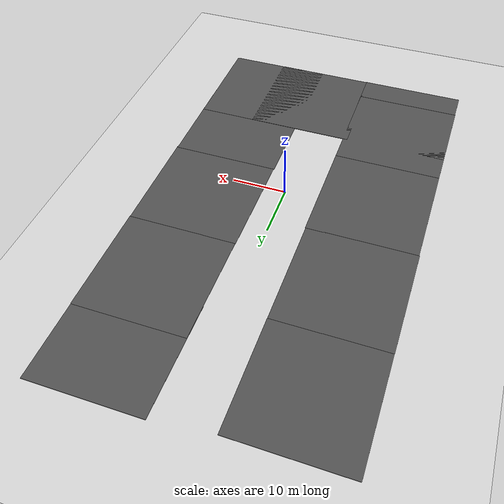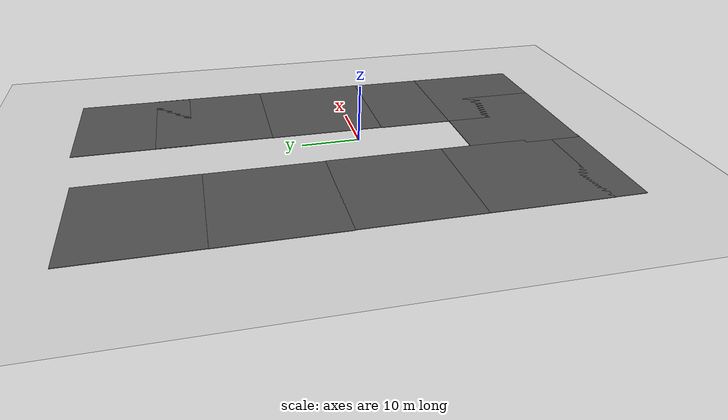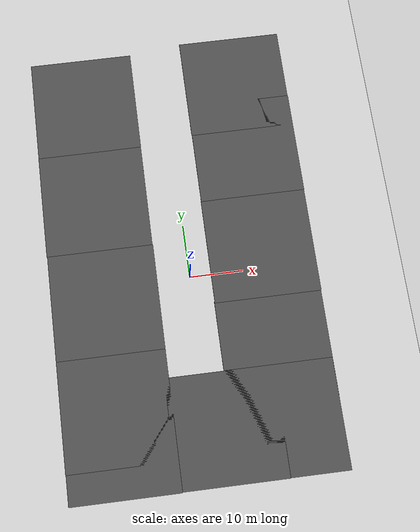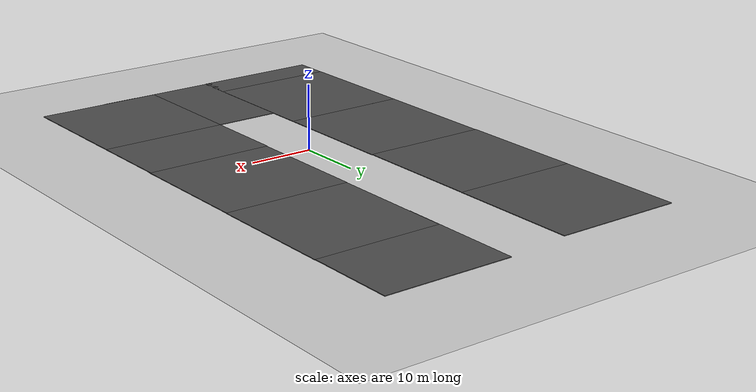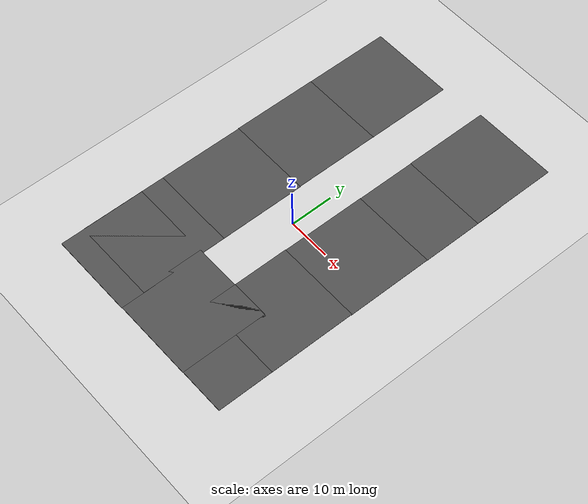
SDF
<sdf version="1.7">
 <world name="default">
  <light name="sun" type="directional">
   <pose>0 0 10 0 -0 0</pose>
   <diffuse>0.8 0.8 0.8 1</diffuse>
   <specular>0.2 0.2 0.2 1</specular>
   <attenuation>
    <range>1000</range>
    <constant>0.9</constant>
    <linear>0.01</linear>
    <quadratic>0.001</quadratic>
   </attenuation>
   <direction>-0.5 0.1 -0.9</direction>
   <spot><inner_angle>0</inner_angle><outer_angle>0</outer_angle><falloff>0</falloff></spot>
  </light>
  <model name="ground_plane">
   <static>1</static>
   <link name="link">
    <collision name="collision">
     <geometry><plane><normal>0 0 1</normal><size>100 100</size></plane></geometry>
     <surface>
      <contact><collide_bitmask>65535</collide_bitmask></contact>
      <friction><ode><mu>100</mu><mu2>50</mu2></ode></friction>
     </surface>
    </collision>
    <visual name="visual">
     <cast_shadows>0</cast_shadows>
     <geometry><plane><normal>0 0 1</normal><size>100 100</size></plane></geometry>
     <material>
      <script><uri>file://media/materials/scripts/gazebo.material</uri><name>Gazebo/Grey</name></script>
     </material>
    </visual>
   </link>
  </model>
  <gravity>0 0 -9.8</gravity>
  <magnetic_field>6e-06 2.3e-05 -4.2e-05</magnetic_field>
  <atmosphere type="adiabatic"/>
  <physics type="ode">
   <max_step_size>0.001</max_step_size>
   <real_time_factor>1</real_time_factor>
   <real_time_update_rate>1000</real_time_update_rate>
  </physics>
  <scene><ambient>0.4 0.4 0.4 1</ambient><background>0.7 0.7 0.7 1</background><shadows>1</shadows></scene>
  <spherical_coordinates>
   <surface_model>EARTH_WGS84</surface_model>
   <latitude_deg>0</latitude_deg>
   <longitude_deg>0</longitude_deg>
   <elevation>0</elevation>
   <heading_deg>0</heading_deg>
  </spherical_coordinates>
  <model name="asphalt_plane">
   <static>1</static>
   <link name="link">
    <collision name="collision"><geometry><box><size>20 20 0.1</size></box></geometry></collision>
    <visual name="visual">
     <cast_shadows>0</cast_shadows>
     <geometry><box><size>20 20 0.1</size></box></geometry>
     <material>
      <script>
       <uri>model://asphalt_plane/materials/scripts</uri>
       <uri>model://asphalt_plane/materials/textures</uri>
       <name>vrc/asphalt</name>
      </script>
     </material>
    </visual>
   </link>
   <pose>14.0739 24.5262 0 0 -0 0</pose>
  </model>
  <model name="asphalt_plane_0">
   <static>1</static>
   <link name="link">
    <collision name="collision"><geometry><box><size>20 20 0.1</size></box></geometry></collision>
    <visual name="visual">
     <cast_shadows>0</cast_shadows>
     <geometry><box><size>20 20 0.1</size></box></geometry>
     <material>
      <script>
       <uri>model://asphalt_plane/materials/scripts</uri>
       <uri>model://asphalt_plane/materials/textures</uri>
       <name>vrc/asphalt</name>
      </script>
     </material>
    </visual>
   </link>
   <pose>14.015 4.56308 0 0 -0 0</pose>
  </model>
  <model name="Fast Food">
   <pose>-38.3181 -0.282032 -2.94293e+06 -0.015562 -0.015273 1.55557</pose>
   <link name="link">
    <pose>-38.3679 -0.329548 3.17292 -0.015562 -0.015273 1.55557</pose>
    <inertial>
     <inertia><ixx>1</ixx><ixy>0</ixy><ixz>0</ixz><iyy>1</iyy><iyz>0</iyz><izz>1</izz></inertia>
     <mass>1</mass>
    </inertial>
    <velocity>0 0 0 0 -0 0</velocity>
    <acceleration>0 0 0 0 -0 0</acceleration>
    <wrench>0 0 0 0 -0 0</wrench>
   </link>
   <scale>1 1 1</scale>
  </model>
  <model name="asphalt_plane_1">
   <static>1</static>
   <link name="link">
    <collision name="collision"><geometry><box><size>20 20 0.1</size></box></geometry></collision>
    <visual name="visual">
     <cast_shadows>0</cast_shadows>
     <geometry><box><size>20 20 0.1</size></box></geometry>
     <material>
      <script>
       <uri>model://asphalt_plane/materials/scripts</uri>
       <uri>model://asphalt_plane/materials/textures</uri>
       <name>vrc/asphalt</name>
      </script>
     </material>
    </visual>
   </link>
   <pose>-16.1918 37.146 0 0 -0 0</pose>
  </model>
  <model name="asphalt_plane_2">
   <static>1</static>
   <link name="link">
    <collision name="collision"><geometry><box><size>20 20 0.1</size></box></geometry></collision>
    <visual name="visual">
     <cast_shadows>0</cast_shadows>
     <geometry><box><size>20 20 0.1</size></box></geometry>
     <material>
      <script>
       <uri>model://asphalt_plane/materials/scripts</uri>
       <uri>model://asphalt_plane/materials/textures</uri>
       <name>vrc/asphalt</name>
      </script>
     </material>
    </visual>
   </link>
   <pose>13.9195 -15.1855 0 0 -0 0</pose>
  </model>
  <model name="asphalt_plane_3">
   <static>1</static>
   <link name="link">
    <collision name="collision"><geometry><box><size>20 20 0.1</size></box></geometry></collision>
    <visual name="visual">
     <cast_shadows>0</cast_shadows>
     <geometry><box><size>20 20 0.1</size></box></geometry>
     <material>
      <script>
       <uri>model://asphalt_plane/materials/scripts</uri>
       <uri>model://asphalt_plane/materials/textures</uri>
       <name>vrc/asphalt</name>
      </script>
     </material>
    </visual>
   </link>
   <pose>3.04367 -28.057 0 0 -0 0</pose>
  </model>
  <model name="asphalt_plane_9">
   <static>1</static>
   <link name="link">
    <collision name="collision"><geometry><box><size>20 20 0.1</size></box></geometry></collision>
    <visual name="visual">
     <cast_shadows>0</cast_shadows>
     <geometry><box><size>20 20 0.1</size></box></geometry>
     <material>
      <script>
       <uri>model://asphalt_plane/materials/scripts</uri>
       <uri>model://asphalt_plane/materials/textures</uri>
       <name>vrc/asphalt</name>
      </script>
     </material>
    </visual>
   </link>
   <pose>13.8962 -28.0023 0 0 -0 0</pose>
  </model>
  <model name="asphalt_plane_10">
   <static>1</static>
   <link name="link">
    <collision name="collision"><geometry><box><size>20 20 0.1</size></box></geometry></collision>
    <visual name="visual">
     <cast_shadows>0</cast_shadows>
     <geometry><box><size>20 20 0.1</size></box></geometry>
     <material>
      <script>
       <uri>model://asphalt_plane/materials/scripts</uri>
       <uri>model://asphalt_plane/materials/textures</uri>
       <name>vrc/asphalt</name>
      </script>
     </material>
    </visual>
   </link>
   <pose>-16.2216 17.176 0 0 -0 0</pose>
  </model>
  <model name="asphalt_plane_11">
   <static>1</static>
   <link name="link">
    <collision name="collision"><geometry><box><size>20 20 0.1</size></box></geometry></collision>
    <visual name="visual">
     <cast_shadows>0</cast_shadows>
     <geometry><box><size>20 20 0.1</size></box></geometry>
     <material>
      <script>
       <uri>model://asphalt_plane/materials/scripts</uri>
       <uri>model://asphalt_plane/materials/textures</uri>
       <name>vrc/asphalt</name>
      </script>
     </material>
    </visual>
   </link>
   <pose>-16.1278 -2.74035 0 0 -0 0</pose>
  </model>
  <model name="asphalt_plane_12">
   <static>1</static>
   <link name="link">
    <collision name="collision"><geometry><box><size>20 20 0.1</size></box></geometry></collision>
    <visual name="visual">
     <cast_shadows>0</cast_shadows>
     <geometry><box><size>20 20 0.1</size></box></geometry>
     <material>
      <script>
       <uri>model://asphalt_plane/materials/scripts</uri>
       <uri>model://asphalt_plane/materials/textures</uri>
       <name>vrc/asphalt</name>
      </script>
     </material>
    </visual>
   </link>
   <pose>-16.1235 -22.7406 0 0 -0 0</pose>
  </model>
  <model name="asphalt_plane_13">
   <static>1</static>
   <link name="link">
    <collision name="collision"><geometry><box><size>20 20 0.1</size></box></geometry></collision>
    <visual name="visual">
     <cast_shadows>0</cast_shadows>
     <geometry><box><size>20 20 0.1</size></box></geometry>
     <material>
      <script>
       <uri>model://asphalt_plane/materials/scripts</uri>
       <uri>model://asphalt_plane/materials/textures</uri>
       <name>vrc/asphalt</name>
      </script>
     </material>
    </visual>
   </link>
   <pose>-16.0754 -28.1626 0 0 -0 0</pose>
  </model>
  <model name="asphalt_plane_14">
   <static>1</static>
   <link name="link">
    <collision name="collision"><geometry><box><size>20 20 0.1</size></box></geometry></collision>
    <visual name="visual">
     <cast_shadows>0</cast_shadows>
     <geometry><box><size>20 20 0.1</size></box></geometry>
     <material>
      <script>
       <uri>model://asphalt_plane/materials/scripts</uri>
       <uri>model://asphalt_plane/materials/textures</uri>
       <name>vrc/asphalt</name>
      </script>
     </material>
    </visual>
   </link>
   <pose>14.0093 38.3406 0 0 -0 0</pose>
  </model>
 </world>
</sdf>
